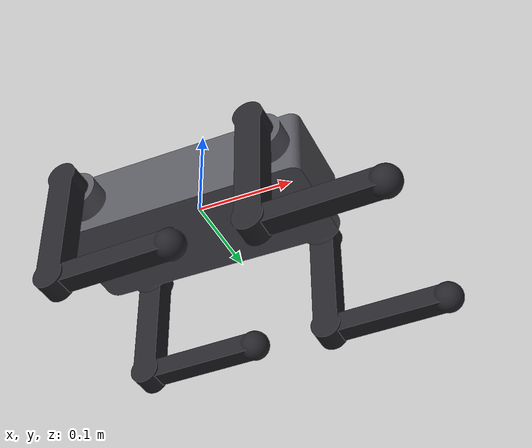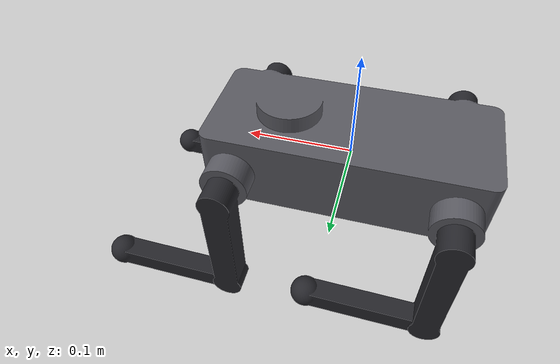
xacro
<?xml version="1.0"?>
<robot name="dog" xmlns:xacro="http://www.ros.org/wiki/xacro">

  <xacro:include filename="$(find dog_description)/urdf/dog.urdf"/>

  <xacro:property name="p_gain" value="40.0"/>
  <!-- d_gain 0: velocity damping comes from the joint dynamics (set in sim.launch.py) -->
  <xacro:property name="d_gain" value="0.0"/>
  <xacro:property name="max_effort" value="5.0"/>

  <xacro:macro name="joint_pos_ctrl" params="joint">
    <gazebo>
      <plugin filename="gz-sim-joint-position-controller-system"
              name="gz::sim::systems::JointPositionController">
        <joint_name>${joint}</joint_name>
        <topic>/dog/${joint}/cmd_pos</topic>
        <p_gain>${p_gain}</p_gain>
        <i_gain>0.0</i_gain>
        <d_gain>${d_gain}</d_gain>
        <cmd_max>${max_effort}</cmd_max>
        <cmd_min>${-max_effort}</cmd_min>
      </plugin>
    </gazebo>
  </xacro:macro>

  <xacro:macro name="leg_sim" params="prefix">
    <xacro:joint_pos_ctrl joint="${prefix}_thigh_joint"/>
    <xacro:joint_pos_ctrl joint="${prefix}_calf_joint"/>
    <!-- grippy feet -->
    <gazebo reference="${prefix}_calf">
      <mu1>0.9</mu1>
      <mu2>0.9</mu2>
    </gazebo>
  </xacro:macro>

  <xacro:leg_sim prefix="FL"/>
  <xacro:leg_sim prefix="FR"/>
  <xacro:leg_sim prefix="RL"/>
  <xacro:leg_sim prefix="RR"/>

  <gazebo>
    <plugin filename="gz-sim-joint-state-publisher-system"
            name="gz::sim::systems::JointStatePublisher">
      <topic>/dog/joint_states</topic>
      <!-- default is every physics step (1 kHz); that floods the Python controllers and delayed
           the 50 Hz RL policy timer by up to 130 ms -->
      <update_rate>200</update_rate>
    </plugin>

    <!-- Odometry from the simulator (stands in for leg odometry / state estimation) -->
    <plugin filename="gz-sim-odometry-publisher-system"
            name="gz::sim::systems::OdometryPublisher">
      <odom_frame>odom</odom_frame>
      <robot_base_frame>base_link</robot_base_frame>
      <odom_topic>/dog/odom</odom_topic>
      <tf_topic>/dog/odom_tf</tf_topic>
      <odom_publish_frequency>50</odom_publish_frequency>
      <dimensions>3</dimensions>
    </plugin>
  </gazebo>

  <gazebo reference="lidar_link">
    <sensor name="lidar" type="gpu_lidar">
      <gz_frame_id>lidar_link</gz_frame_id>
      <topic>/dog/scan</topic>
      <update_rate>10</update_rate>
      <always_on>true</always_on>
      <visualize>true</visualize>
      <lidar>
        <scan>
          <horizontal>
            <samples>360</samples>
            <resolution>1</resolution>
            <min_angle>-3.14159</min_angle>
            <max_angle>3.14159</max_angle>
          </horizontal>
        </scan>
        <range>
          <min>0.25</min>
          <max>8.0</max>
          <resolution>0.01</resolution>
        </range>
        <noise>
          <type>gaussian</type>
          <mean>0.0</mean>
          <stddev>0.01</stddev>
        </noise>
      </lidar>
    </sensor>
  </gazebo>

  <gazebo reference="imu_link">
    <sensor name="imu" type="imu">
      <gz_frame_id>imu_link</gz_frame_id>
      <topic>/dog/imu</topic>
      <update_rate>100</update_rate>
      <always_on>true</always_on>
    </sensor>
  </gazebo>

</robot>

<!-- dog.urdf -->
<robot name="dog">

  <material name="body_grey"><color rgba="0.35 0.35 0.38 1"/></material>
  <material name="leg_dark"><color rgba="0.15 0.15 0.17 1"/></material>

  <link name="base_link">
    <visual>
      <geometry><mesh filename="package://dog_description/meshes/base_link.stl" scale="0.001 0.001 0.001"/></geometry>
      <material name="body_grey"/>
    </visual>
    <collision>
      <origin xyz="0 0 0" rpy="0 0 0"/>
      <geometry><box size="0.26 0.11 0.07"/></geometry>
    </collision>
    <collision>
      <origin xyz="0.06 0 0.0425" rpy="0 0 0"/>
      <geometry><cylinder radius="0.03" length="0.015"/></geometry>
    </collision>
    <collision>
      <origin xyz="0.1 0.06 0" rpy="1.5708 0 0"/>
      <geometry><cylinder radius="0.022" length="0.035"/></geometry>
    </collision>
    <collision>
      <origin xyz="0.1 -0.06 0" rpy="1.5708 0 0"/>
      <geometry><cylinder radius="0.022" length="0.035"/></geometry>
    </collision>
    <collision>
      <origin xyz="-0.1 0.06 0" rpy="1.5708 0 0"/>
      <geometry><cylinder radius="0.022" length="0.035"/></geometry>
    </collision>
    <collision>
      <origin xyz="-0.1 -0.06 0" rpy="1.5708 0 0"/>
      <geometry><cylinder radius="0.022" length="0.035"/></geometry>
    </collision>
    <inertial>
      <origin xyz="0.00463 0 0.00304" rpy="0 0 0"/>
      <mass value="1.8"/>
      <inertia ixx="2.550000e-03" ixy="0" ixz="0" iyy="1.087500e-02" iyz="0" izz="1.195500e-02"/>
    </inertial>
  </link>

  <!-- FL leg -->
  <joint name="FL_thigh_joint" type="revolute">
    <parent link="base_link"/>
    <child link="FL_thigh"/>
    <origin xyz="0.1 0.09 0" rpy="0 0 0"/>
    <axis xyz="0 1 0"/>
    <limit lower="-1.5" upper="1.5" effort="5" velocity="10"/>
    <dynamics damping="0.05" friction="0.0"/>
  </joint>

  <link name="FL_thigh">
    <visual>
      <geometry><mesh filename="package://dog_description/meshes/thigh.stl" scale="0.001 0.001 0.001"/></geometry>
      <material name="leg_dark"/>
    </visual>
    <collision>
      <origin xyz="0 0 -0.06" rpy="0 0 0"/>
      <geometry><box size="0.025 0.025 0.12"/></geometry>
    </collision>
    <inertial>
      <origin xyz="0 0 -0.06" rpy="0 0 0"/>
      <mass value="0.2"/>
      <inertia ixx="2.504167e-04" ixy="0" ixz="0" iyy="2.504167e-04" iyz="0" izz="2.083333e-05"/>
    </inertial>
  </link>

  <joint name="FL_calf_joint" type="revolute">
    <parent link="FL_thigh"/>
    <child link="FL_calf"/>
    <origin xyz="0 0 -0.12" rpy="0 0 0"/>
    <axis xyz="0 1 0"/>
    <limit lower="-2.6" upper="-0.6" effort="5" velocity="10"/>
    <dynamics damping="0.05" friction="0.0"/>
  </joint>

  <link name="FL_calf">
    <visual>
      <geometry><mesh filename="package://dog_description/meshes/calf.stl" scale="0.001 0.001 0.001"/></geometry>
      <material name="leg_dark"/>
    </visual>
    <collision>
      <origin xyz="0 0 -0.06" rpy="0 0 0"/>
      <geometry><box size="0.02 0.02 0.12"/></geometry>
    </collision>
    <collision>
      <origin xyz="0 0 -0.12" rpy="0 0 0"/>
      <geometry><sphere radius="0.015"/></geometry>
    </collision>
    <inertial>
      <origin xyz="0 0 -0.06428" rpy="0 0 0"/>
      <mass value="0.12"/>
      <inertia ixx="1.862500e-04" ixy="0" ixz="0" iyy="1.862500e-04" iyz="0" izz="8.000000e-06"/>
    </inertial>
  </link>

  <!-- FR leg -->
  <joint name="FR_thigh_joint" type="revolute">
    <parent link="base_link"/>
    <child link="FR_thigh"/>
    <origin xyz="0.1 -0.09 0" rpy="0 0 0"/>
    <axis xyz="0 1 0"/>
    <limit lower="-1.5" upper="1.5" effort="5" velocity="10"/>
    <dynamics damping="0.05" friction="0.0"/>
  </joint>

  <link name="FR_thigh">
    <visual>
      <geometry><mesh filename="package://dog_description/meshes/thigh.stl" scale="0.001 0.001 0.001"/></geometry>
      <material name="leg_dark"/>
    </visual>
    <collision>
      <origin xyz="0 0 -0.06" rpy="0 0 0"/>
      <geometry><box size="0.025 0.025 0.12"/></geometry>
    </collision>
    <inertial>
      <origin xyz="0 0 -0.06" rpy="0 0 0"/>
      <mass value="0.2"/>
      <inertia ixx="2.504167e-04" ixy="0" ixz="0" iyy="2.504167e-04" iyz="0" izz="2.083333e-05"/>
    </inertial>
  </link>

  <joint name="FR_calf_joint" type="revolute">
    <parent link="FR_thigh"/>
    <child link="FR_calf"/>
    <origin xyz="0 0 -0.12" rpy="0 0 0"/>
    <axis xyz="0 1 0"/>
    <limit lower="-2.6" upper="-0.6" effort="5" velocity="10"/>
    <dynamics damping="0.05" friction="0.0"/>
  </joint>

  <link name="FR_calf">
    <visual>
      <geometry><mesh filename="package://dog_description/meshes/calf.stl" scale="0.001 0.001 0.001"/></geometry>
      <material name="leg_dark"/>
    </visual>
    <collision>
      <origin xyz="0 0 -0.06" rpy="0 0 0"/>
      <geometry><box size="0.02 0.02 0.12"/></geometry>
    </collision>
    <collision>
      <origin xyz="0 0 -0.12" rpy="0 0 0"/>
      <geometry><sphere radius="0.015"/></geometry>
    </collision>
    <inertial>
      <origin xyz="0 0 -0.06428" rpy="0 0 0"/>
      <mass value="0.12"/>
      <inertia ixx="1.862500e-04" ixy="0" ixz="0" iyy="1.862500e-04" iyz="0" izz="8.000000e-06"/>
    </inertial>
  </link>

  <!-- RL leg -->
  <joint name="RL_thigh_joint" type="revolute">
    <parent link="base_link"/>
    <child link="RL_thigh"/>
    <origin xyz="-0.1 0.09 0" rpy="0 0 0"/>
    <axis xyz="0 1 0"/>
    <limit lower="-1.5" upper="1.5" effort="5" velocity="10"/>
    <dynamics damping="0.05" friction="0.0"/>
  </joint>

  <link name="RL_thigh">
    <visual>
      <geometry><mesh filename="package://dog_description/meshes/thigh.stl" scale="0.001 0.001 0.001"/></geometry>
      <material name="leg_dark"/>
    </visual>
    <collision>
      <origin xyz="0 0 -0.06" rpy="0 0 0"/>
      <geometry><box size="0.025 0.025 0.12"/></geometry>
    </collision>
    <inertial>
      <origin xyz="0 0 -0.06" rpy="0 0 0"/>
      <mass value="0.2"/>
      <inertia ixx="2.504167e-04" ixy="0" ixz="0" iyy="2.504167e-04" iyz="0" izz="2.083333e-05"/>
    </inertial>
  </link>

  <joint name="RL_calf_joint" type="revolute">
    <parent link="RL_thigh"/>
    <child link="RL_calf"/>
    <origin xyz="0 0 -0.12" rpy="0 0 0"/>
    <axis xyz="0 1 0"/>
    <limit lower="-2.6" upper="-0.6" effort="5" velocity="10"/>
    <dynamics damping="0.05" friction="0.0"/>
  </joint>

  <link name="RL_calf">
    <visual>
      <geometry><mesh filename="package://dog_description/meshes/calf.stl" scale="0.001 0.001 0.001"/></geometry>
      <material name="leg_dark"/>
    </visual>
    <collision>
      <origin xyz="0 0 -0.06" rpy="0 0 0"/>
      <geometry><box size="0.02 0.02 0.12"/></geometry>
    </collision>
    <collision>
      <origin xyz="0 0 -0.12" rpy="0 0 0"/>
      <geometry><sphere radius="0.015"/></geometry>
    </collision>
    <inertial>
      <origin xyz="0 0 -0.06428" rpy="0 0 0"/>
      <mass value="0.12"/>
      <inertia ixx="1.862500e-04" ixy="0" ixz="0" iyy="1.862500e-04" iyz="0" izz="8.000000e-06"/>
    </inertial>
  </link>

  <!-- RR leg -->
  <joint name="RR_thigh_joint" type="revolute">
    <parent link="base_link"/>
    <child link="RR_thigh"/>
    <origin xyz="-0.1 -0.09 0" rpy="0 0 0"/>
    <axis xyz="0 1 0"/>
    <limit lower="-1.5" upper="1.5" effort="5" velocity="10"/>
    <dynamics damping="0.05" friction="0.0"/>
  </joint>

  <link name="RR_thigh">
    <visual>
      <geometry><mesh filename="package://dog_description/meshes/thigh.stl" scale="0.001 0.001 0.001"/></geometry>
      <material name="leg_dark"/>
    </visual>
    <collision>
      <origin xyz="0 0 -0.06" rpy="0 0 0"/>
      <geometry><box size="0.025 0.025 0.12"/></geometry>
    </collision>
    <inertial>
      <origin xyz="0 0 -0.06" rpy="0 0 0"/>
      <mass value="0.2"/>
      <inertia ixx="2.504167e-04" ixy="0" ixz="0" iyy="2.504167e-04" iyz="0" izz="2.083333e-05"/>
    </inertial>
  </link>

  <joint name="RR_calf_joint" type="revolute">
    <parent link="RR_thigh"/>
    <child link="RR_calf"/>
    <origin xyz="0 0 -0.12" rpy="0 0 0"/>
    <axis xyz="0 1 0"/>
    <limit lower="-2.6" upper="-0.6" effort="5" velocity="10"/>
    <dynamics damping="0.05" friction="0.0"/>
  </joint>

  <link name="RR_calf">
    <visual>
      <geometry><mesh filename="package://dog_description/meshes/calf.stl" scale="0.001 0.001 0.001"/></geometry>
      <material name="leg_dark"/>
    </visual>
    <collision>
      <origin xyz="0 0 -0.06" rpy="0 0 0"/>
      <geometry><box size="0.02 0.02 0.12"/></geometry>
    </collision>
    <collision>
      <origin xyz="0 0 -0.12" rpy="0 0 0"/>
      <geometry><sphere radius="0.015"/></geometry>
    </collision>
    <inertial>
      <origin xyz="0 0 -0.06428" rpy="0 0 0"/>
      <mass value="0.12"/>
      <inertia ixx="1.862500e-04" ixy="0" ixz="0" iyy="1.862500e-04" iyz="0" izz="8.000000e-06"/>
    </inertial>
  </link>

  <!-- sensor frames (no geometry) -->
  <joint name="lidar_joint" type="fixed">
    <parent link="base_link"/>
    <child link="lidar_link"/>
    <origin xyz="0.06 0 0.05" rpy="0 0 0"/>
  </joint>

  <link name="lidar_link"/>

  <joint name="imu_joint" type="fixed">
    <parent link="base_link"/>
    <child link="imu_link"/>
    <origin xyz="0 0 -0.027" rpy="0 0 0"/>
  </joint>

  <link name="imu_link"/>

</robot>
